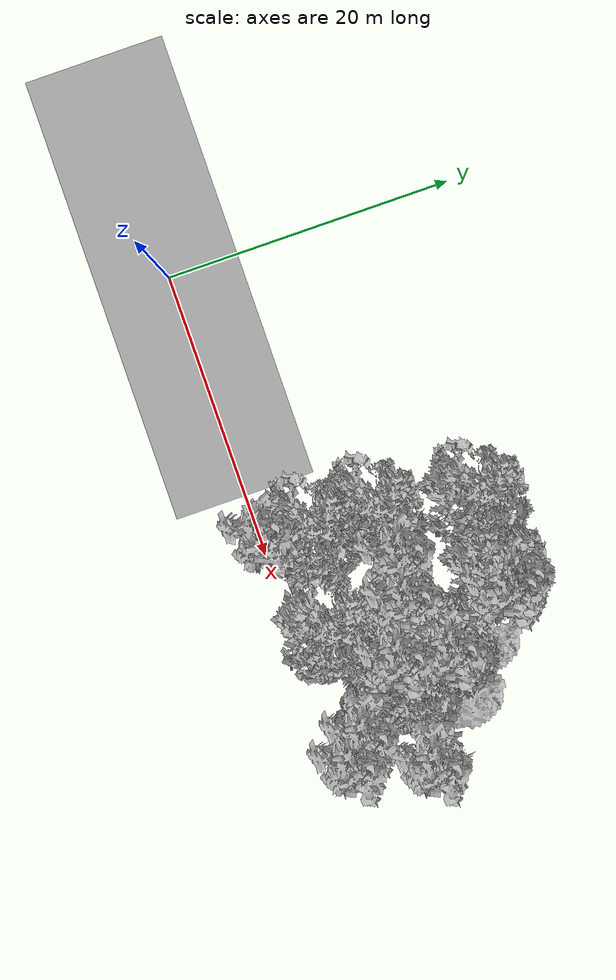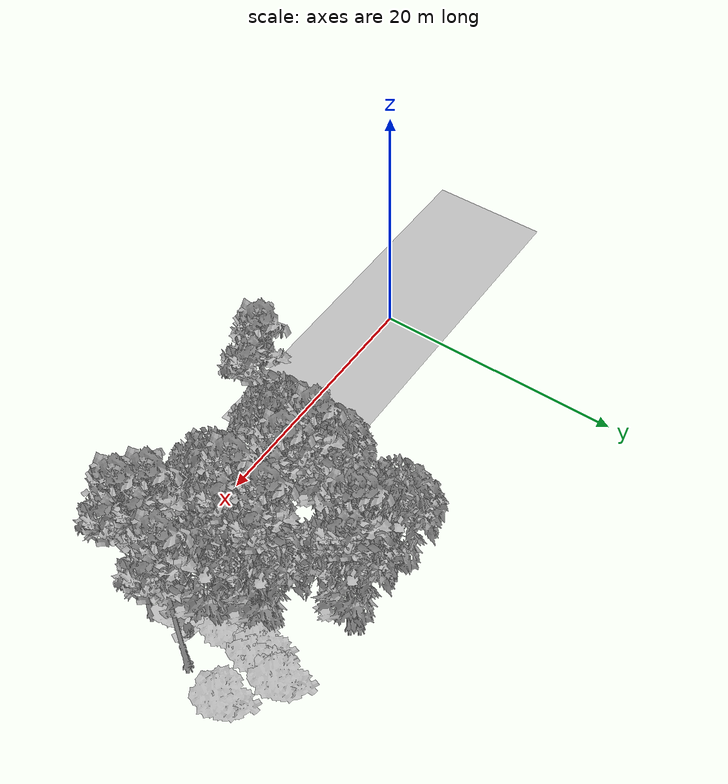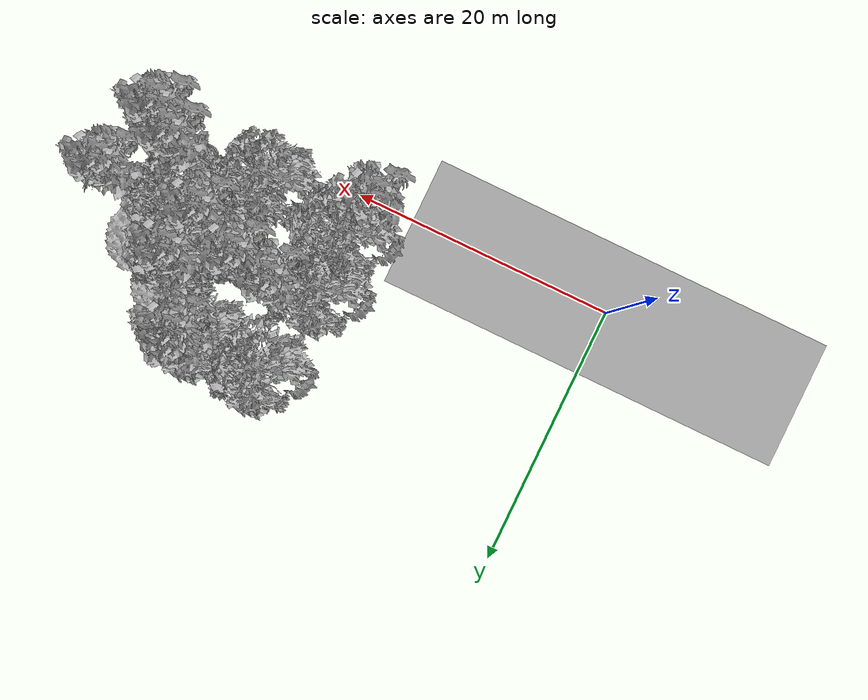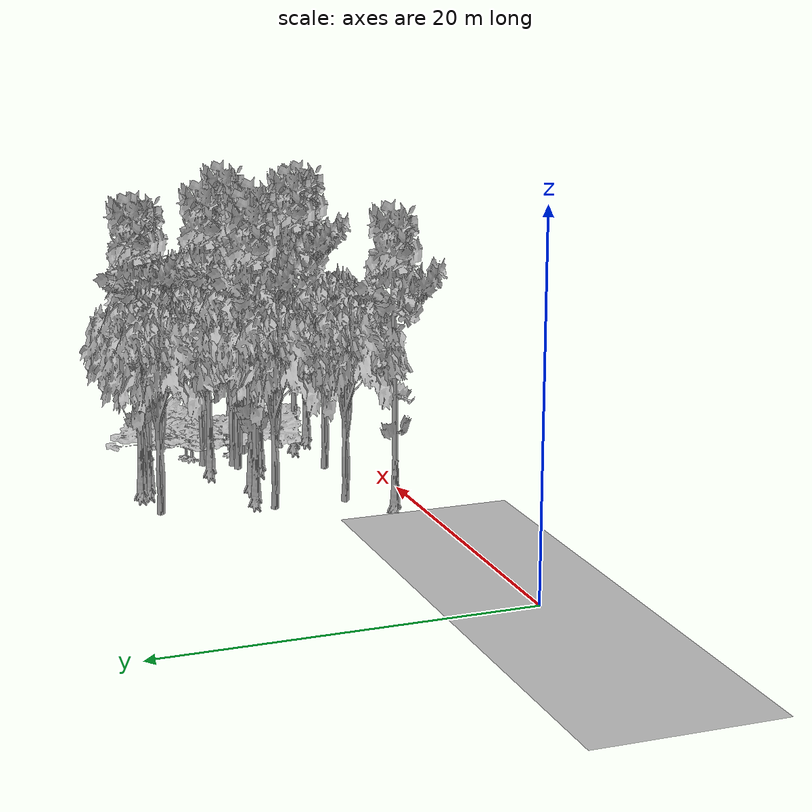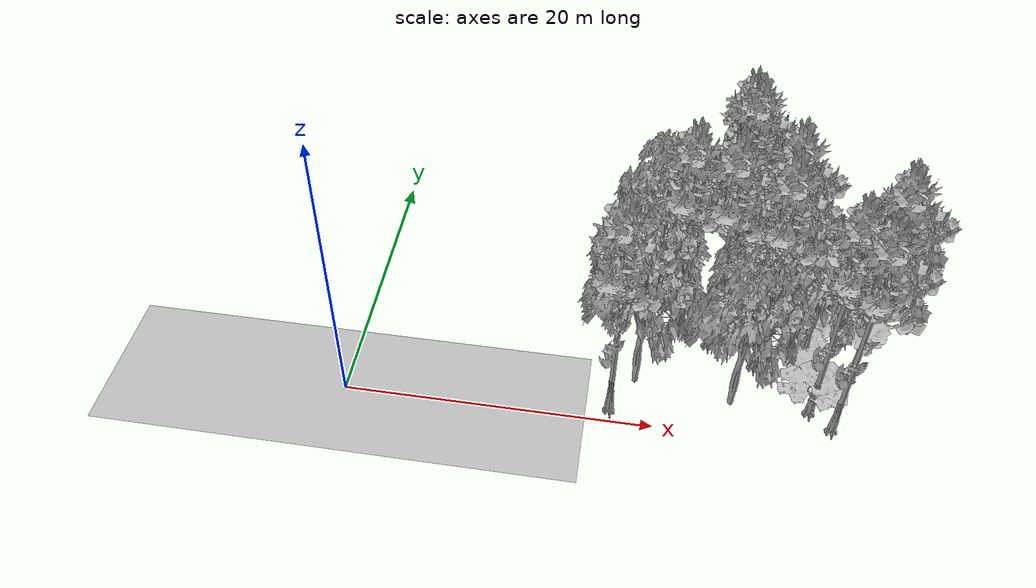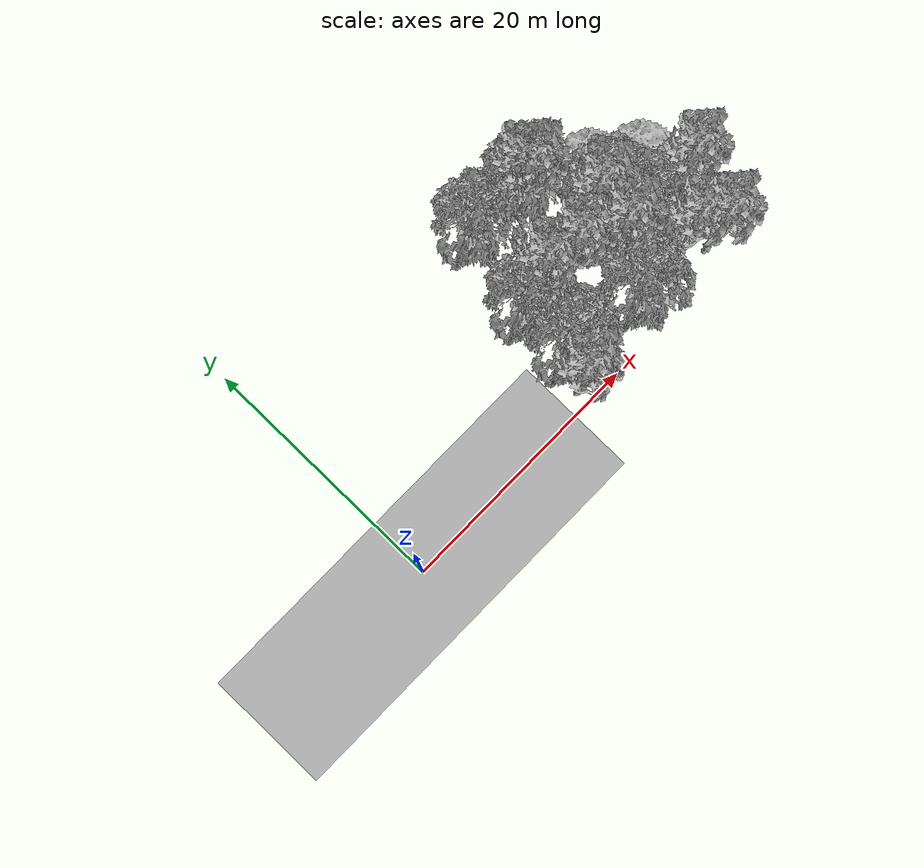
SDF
<sdf version="1.7">
 <world name="default">
  <model name="ground_plane">
   <static>1</static>
   <link name="link">
    <collision name="collision">
     <pose>-50 0 0 0 -0 0</pose>
     <geometry><plane><normal>0 0 1</normal><size>100 100</size></plane></geometry>
     <surface><contact><ode><min_depth>0.01</min_depth><max_vel>0</max_vel></ode></contact></surface>
    </collision>
    <visual name="grass">
     <cast_shadows>0</cast_shadows>
     <geometry>
      <mesh>
       <scale>0.5814285714285714 0.18142857142857144 0.1</scale>
       <uri>file://grass_plane/meshes/grass_plane.dae</uri>
      </mesh>
     </geometry>
    </visual>
   </link>
  </model>
  <model name="Tree 4">
   <static>1</static>
   <pose>30.348621100929932 12.14553751947339 0 1.57079 -0 0</pose>
   <link name="link">
    <collision name="collision">
     <geometry><mesh><scale>4 2.5 4</scale><uri>model://tree_1/meshes/tree_1.obj</uri></mesh></geometry>
    </collision>
    <visual name="visual">
     <geometry><mesh><scale>4 2.5 4</scale><uri>model://tree_1/meshes/tree_1.obj</uri></mesh></geometry>
    </visual>
   </link>
  </model>
  <model name="Tree 26">
   <static>1</static>
   <pose>27.782344782686934 9.301674965134488 0 1.57079 -0 0</pose>
   <link name="link">
    <collision name="collision">
     <geometry><mesh><scale>3.5 5 3.5</scale><uri>model://tree_2/meshes/tree_2.obj</uri></mesh></geometry>
    </collision>
    <visual name="visual">
     <geometry><mesh><scale>3.5 5 3.5</scale><uri>model://tree_2/meshes/tree_2.obj</uri></mesh></geometry>
    </visual>
   </link>
  </model>
  <model name="Tree 37">
   <static>1</static>
   <pose>26.44899131177104 6.2313804977998615 0 1.57079 -0 0</pose>
   <link name="link">
    <collision name="collision">
     <geometry><mesh><scale>3.5 5 3.5</scale><uri>model://tree_9/meshes/tree_9.obj</uri></mesh></geometry>
    </collision>
    <visual name="visual">
     <geometry><mesh><scale>3.5 5 3.5</scale><uri>model://tree_9/meshes/tree_9.obj</uri></mesh></geometry>
    </visual>
   </link>
  </model>
  <model name="Tree 57">
   <static>1</static>
   <pose>24.565658446854314 13.68951025167928 0 1.57079 -0 0</pose>
   <link name="link">
    <collision name="collision">
     <geometry><mesh><scale>3.5 5 3.5</scale><uri>model://tree_2/meshes/tree_2.obj</uri></mesh></geometry>
    </collision>
    <visual name="visual">
     <geometry><mesh><scale>3.5 5 3.5</scale><uri>model://tree_2/meshes/tree_2.obj</uri></mesh></geometry>
    </visual>
   </link>
  </model>
  <model name="Tree 67">
   <static>1</static>
   <pose>24.25116602217112 13.973536191508312 0 1.57079 -0 0</pose>
   <link name="link">
    <collision name="collision">
     <geometry><mesh><scale>3.5 5 3.5</scale><uri>model://tree_9/meshes/tree_9.obj</uri></mesh></geometry>
    </collision>
    <visual name="visual">
     <geometry><mesh><scale>3.5 5 3.5</scale><uri>model://tree_9/meshes/tree_9.obj</uri></mesh></geometry>
    </visual>
   </link>
  </model>
  <model name="Tree 69">
   <static>1</static>
   <pose>31.287699023788377 1.7447688590522112 0 1.57079 -0 0</pose>
   <link name="link">
    <collision name="collision">
     <geometry><mesh><scale>3.5 5 3.5</scale><uri>model://tree_9/meshes/tree_9.obj</uri></mesh></geometry>
    </collision>
    <visual name="visual">
     <geometry><mesh><scale>3.5 5 3.5</scale><uri>model://tree_9/meshes/tree_9.obj</uri></mesh></geometry>
    </visual>
   </link>
  </model>
  <model name="Tree 72">
   <static>1</static>
   <pose>29.357611934882826 7.202848257458825 0 1.57079 -0 0</pose>
   <link name="link">
    <collision name="collision">
     <geometry><mesh><scale>4 2.5 4</scale><uri>model://tree_1/meshes/tree_1.obj</uri></mesh></geometry>
    </collision>
    <visual name="visual">
     <geometry><mesh><scale>4 2.5 4</scale><uri>model://tree_1/meshes/tree_1.obj</uri></mesh></geometry>
    </visual>
   </link>
  </model>
  <model name="Tree 108">
   <static>1</static>
   <pose>27.129486745069315 7.6549963733089825 0 1.57079 -0 0</pose>
   <link name="link">
    <collision name="collision">
     <geometry><mesh><scale>3.5 5 3.5</scale><uri>model://tree_2/meshes/tree_2.obj</uri></mesh></geometry>
    </collision>
    <visual name="visual">
     <geometry><mesh><scale>3.5 5 3.5</scale><uri>model://tree_2/meshes/tree_2.obj</uri></mesh></geometry>
    </visual>
   </link>
  </model>
  <model name="Tree 115">
   <static>1</static>
   <pose>20.85043510351518 8.186925690047158 0 1.57079 -0 0</pose>
   <link name="link">
    <collision name="collision">
     <geometry><mesh><scale>3.5 5 3.5</scale><uri>model://tree_9/meshes/tree_9.obj</uri></mesh></geometry>
    </collision>
    <visual name="visual">
     <geometry><mesh><scale>3.5 5 3.5</scale><uri>model://tree_9/meshes/tree_9.obj</uri></mesh></geometry>
    </visual>
   </link>
  </model>
  <model name="Tree 122">
   <static>1</static>
   <pose>24.620257309606387 13.411744231612644 0 1.57079 -0 0</pose>
   <link name="link">
    <collision name="collision">
     <geometry><mesh><scale>3.5 5 3.5</scale><uri>model://tree_9/meshes/tree_9.obj</uri></mesh></geometry>
    </collision>
    <visual name="visual">
     <geometry><mesh><scale>3.5 5 3.5</scale><uri>model://tree_9/meshes/tree_9.obj</uri></mesh></geometry>
    </visual>
   </link>
  </model>
  <model name="Tree 130">
   <static>1</static>
   <pose>26.440464699220172 7.538439787521355 0 1.57079 -0 0</pose>
   <link name="link">
    <collision name="collision">
     <geometry><mesh><scale>3.5 5 3.5</scale><uri>model://tree_2/meshes/tree_2.obj</uri></mesh></geometry>
    </collision>
    <visual name="visual">
     <geometry><mesh><scale>3.5 5 3.5</scale><uri>model://tree_2/meshes/tree_2.obj</uri></mesh></geometry>
    </visual>
   </link>
  </model>
  <model name="Tree 132">
   <static>1</static>
   <pose>19.934363284006167 13.924379250482872 0 1.57079 -0 0</pose>
   <link name="link">
    <collision name="collision">
     <geometry><mesh><scale>3.5 5 3.5</scale><uri>model://tree_2/meshes/tree_2.obj</uri></mesh></geometry>
    </collision>
    <visual name="visual">
     <geometry><mesh><scale>3.5 5 3.5</scale><uri>model://tree_2/meshes/tree_2.obj</uri></mesh></geometry>
    </visual>
   </link>
  </model>
  <model name="Tree 144">
   <static>1</static>
   <pose>18.69812232660078 7.681884141674537 0 1.57079 -0 0</pose>
   <link name="link">
    <collision name="collision">
     <geometry><mesh><scale>3.5 5 3.5</scale><uri>model://tree_2/meshes/tree_2.obj</uri></mesh></geometry>
    </collision>
    <visual name="visual">
     <geometry><mesh><scale>3.5 5 3.5</scale><uri>model://tree_2/meshes/tree_2.obj</uri></mesh></geometry>
    </visual>
   </link>
  </model>
  <model name="Tree 147">
   <static>1</static>
   <pose>18.58332659580452 3.5733471875586673 0 1.57079 -0 0</pose>
   <link name="link">
    <collision name="collision">
     <geometry><mesh><scale>3.5 5 3.5</scale><uri>model://tree_2/meshes/tree_2.obj</uri></mesh></geometry>
    </collision>
    <visual name="visual">
     <geometry><mesh><scale>3.5 5 3.5</scale><uri>model://tree_2/meshes/tree_2.obj</uri></mesh></geometry>
    </visual>
   </link>
  </model>
  <model name="Tree 152">
   <static>1</static>
   <pose>33.41300208062182 9.924701946614395 0 1.57079 -0 0</pose>
   <link name="link">
    <collision name="collision">
     <geometry><mesh><scale>4 2.5 4</scale><uri>model://tree_1/meshes/tree_1.obj</uri></mesh></geometry>
    </collision>
    <visual name="visual">
     <geometry><mesh><scale>4 2.5 4</scale><uri>model://tree_1/meshes/tree_1.obj</uri></mesh></geometry>
    </visual>
   </link>
  </model>
  <model name="Tree 159">
   <static>1</static>
   <pose>17.18748840327082 1.1474581067920688 0 1.57079 -0 0</pose>
   <link name="link">
    <collision name="collision">
     <geometry><mesh><scale>3.5 5 3.5</scale><uri>model://tree_9/meshes/tree_9.obj</uri></mesh></geometry>
    </collision>
    <visual name="visual">
     <geometry><mesh><scale>3.5 5 3.5</scale><uri>model://tree_9/meshes/tree_9.obj</uri></mesh></geometry>
    </visual>
   </link>
  </model>
  <model name="Tree 172">
   <static>1</static>
   <pose>29.215448653796003 9.658570579122827 0 1.57079 -0 0</pose>
   <link name="link">
    <collision name="collision">
     <geometry><mesh><scale>4 2.5 4</scale><uri>model://tree_1/meshes/tree_1.obj</uri></mesh></geometry>
    </collision>
    <visual name="visual">
     <geometry><mesh><scale>4 2.5 4</scale><uri>model://tree_1/meshes/tree_1.obj</uri></mesh></geometry>
    </visual>
   </link>
  </model>
  <model name="Tree 174">
   <static>1</static>
   <pose>24.796330411274667 2.6906966154504453 0 1.57079 -0 0</pose>
   <link name="link">
    <collision name="collision">
     <geometry><mesh><scale>3.5 5 3.5</scale><uri>model://tree_2/meshes/tree_2.obj</uri></mesh></geometry>
    </collision>
    <visual name="visual">
     <geometry><mesh><scale>3.5 5 3.5</scale><uri>model://tree_2/meshes/tree_2.obj</uri></mesh></geometry>
    </visual>
   </link>
  </model>
  <model name="Tree 222">
   <static>1</static>
   <pose>26.94289331854995 9.13898356244092 0 1.57079 -0 0</pose>
   <link name="link">
    <collision name="collision">
     <geometry><mesh><scale>3.5 5 3.5</scale><uri>model://tree_9/meshes/tree_9.obj</uri></mesh></geometry>
    </collision>
    <visual name="visual">
     <geometry><mesh><scale>3.5 5 3.5</scale><uri>model://tree_9/meshes/tree_9.obj</uri></mesh></geometry>
    </visual>
   </link>
  </model>
  <model name="Tree 250">
   <static>1</static>
   <pose>29.695807237863505 9.88694045905326 0 1.57079 -0 0</pose>
   <link name="link">
    <collision name="collision">
     <geometry><mesh><scale>4 2.5 4</scale><uri>model://tree_1/meshes/tree_1.obj</uri></mesh></geometry>
    </collision>
    <visual name="visual">
     <geometry><mesh><scale>4 2.5 4</scale><uri>model://tree_1/meshes/tree_1.obj</uri></mesh></geometry>
    </visual>
   </link>
  </model>
  <model name="Tree 254">
   <static>1</static>
   <pose>30.087913371551892 3.8100187378923636 0 1.57079 -0 0</pose>
   <link name="link">
    <collision name="collision">
     <geometry><mesh><scale>3 2 3</scale><uri>model://tree_3/meshes/tree_3.obj</uri></mesh></geometry>
    </collision>
    <visual name="visual">
     <geometry><mesh><scale>3 2 3</scale><uri>model://tree_3/meshes/tree_3.obj</uri></mesh></geometry>
    </visual>
   </link>
  </model>
  <model name="Tree 256">
   <static>1</static>
   <pose>29.310946049619588 6.36567673606584 0 1.57079 -0 0</pose>
   <link name="link">
    <collision name="collision">
     <geometry><mesh><scale>3.5 5 3.5</scale><uri>model://tree_2/meshes/tree_2.obj</uri></mesh></geometry>
    </collision>
    <visual name="visual">
     <geometry><mesh><scale>3.5 5 3.5</scale><uri>model://tree_2/meshes/tree_2.obj</uri></mesh></geometry>
    </visual>
   </link>
  </model>
  <model name="Tree 287">
   <static>1</static>
   <pose>32.81342378042808 6.210942641455059 0 1.57079 -0 0</pose>
   <link name="link">
    <collision name="collision">
     <geometry><mesh><scale>3.5 5 3.5</scale><uri>model://tree_9/meshes/tree_9.obj</uri></mesh></geometry>
    </collision>
    <visual name="visual">
     <geometry><mesh><scale>3.5 5 3.5</scale><uri>model://tree_9/meshes/tree_9.obj</uri></mesh></geometry>
    </visual>
   </link>
  </model>
  <model name="Tree 288">
   <static>1</static>
   <pose>23.388542880394738 7.700771541662373 0 1.57079 -0 0</pose>
   <link name="link">
    <collision name="collision">
     <geometry><mesh><scale>3.5 5 3.5</scale><uri>model://tree_9/meshes/tree_9.obj</uri></mesh></geometry>
    </collision>
    <visual name="visual">
     <geometry><mesh><scale>3.5 5 3.5</scale><uri>model://tree_9/meshes/tree_9.obj</uri></mesh></geometry>
    </visual>
   </link>
  </model>
  <model name="Tree 297">
   <static>1</static>
   <pose>29.951599733701343 2.944682249955907 0 1.57079 -0 0</pose>
   <link name="link">
    <collision name="collision">
     <geometry><mesh><scale>3.5 5 3.5</scale><uri>model://tree_9/meshes/tree_9.obj</uri></mesh></geometry>
    </collision>
    <visual name="visual">
     <geometry><mesh><scale>3.5 5 3.5</scale><uri>model://tree_9/meshes/tree_9.obj</uri></mesh></geometry>
    </visual>
   </link>
  </model>
 </world>
</sdf>
